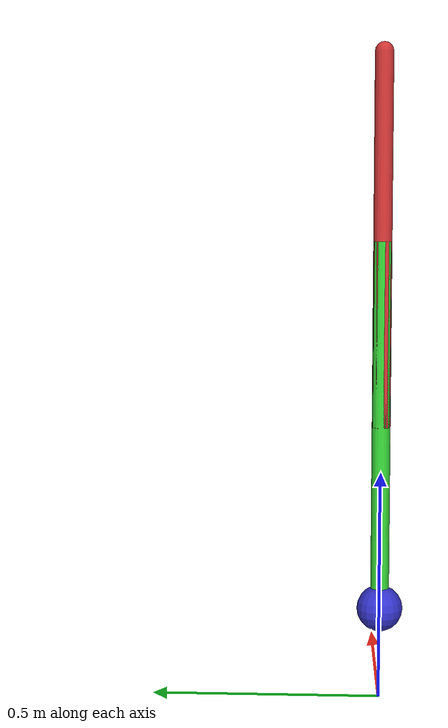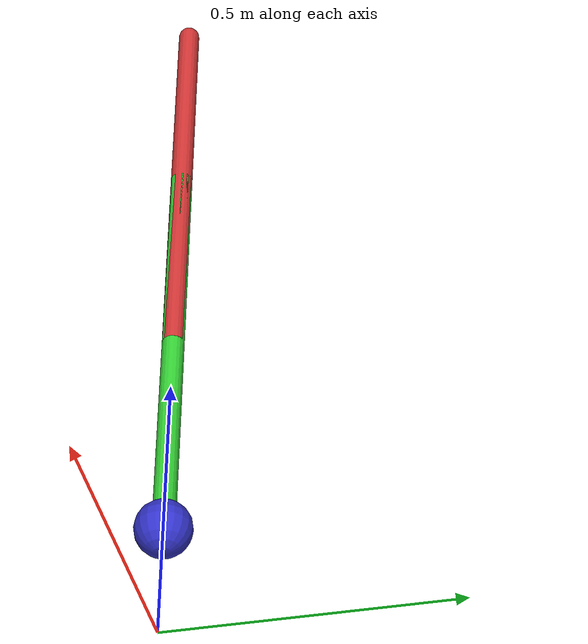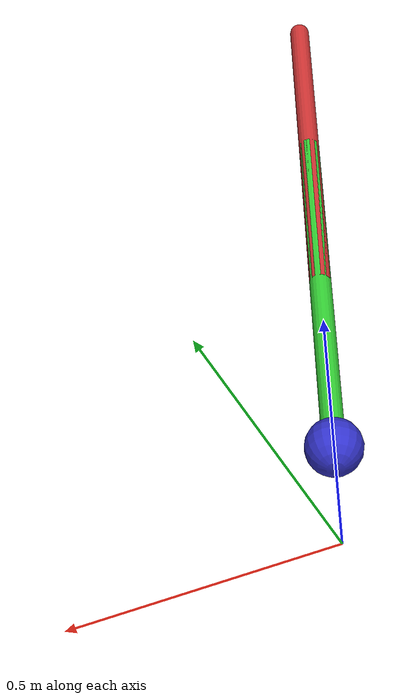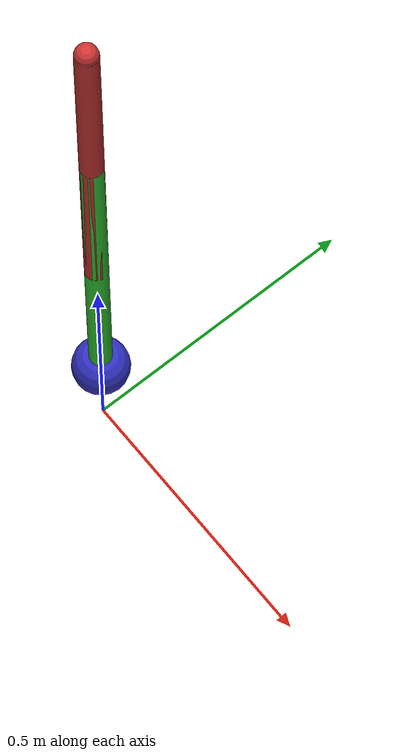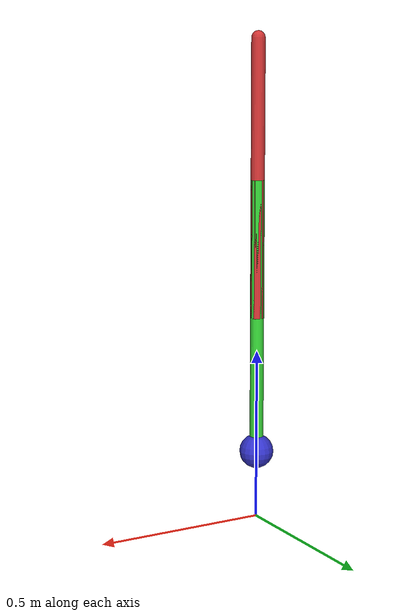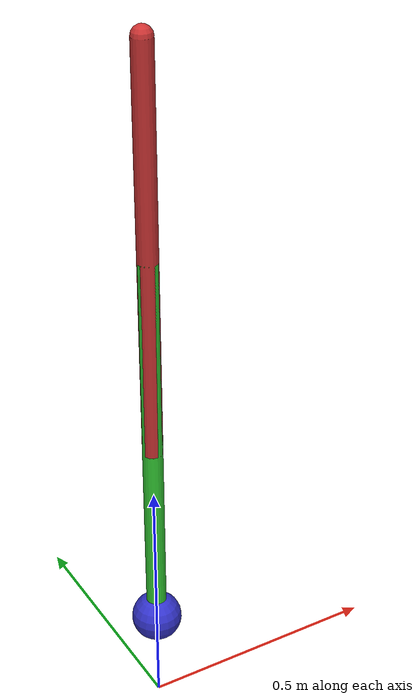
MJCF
<mujoco>
    <worldbody>
        <body name="pole1" pos="0 0 1">
            <joint name="hinge1" type="hinge" axis="1 0 0"/>
            <geom name="pole1" type="capsule" size="0.02 0.4" rgba="0.8 0.2 0.2 1"/>
            <body name="pole2" pos="0 0 -0.4">
                <joint name="hinge2" type="hinge" axis="1 0 0"/>
                <geom name="pole2" type="capsule" size="0.02 0.4" rgba="0.2 0.8 0.2 1"/>
                <body name="mass" pos="0 0 -0.4">
                    <geom name="mass" type="sphere" size="0.05" rgba="0.2 0.2 0.8 1"/>
                </body>
            </body>
        </body>
    </worldbody>
</mujoco>
